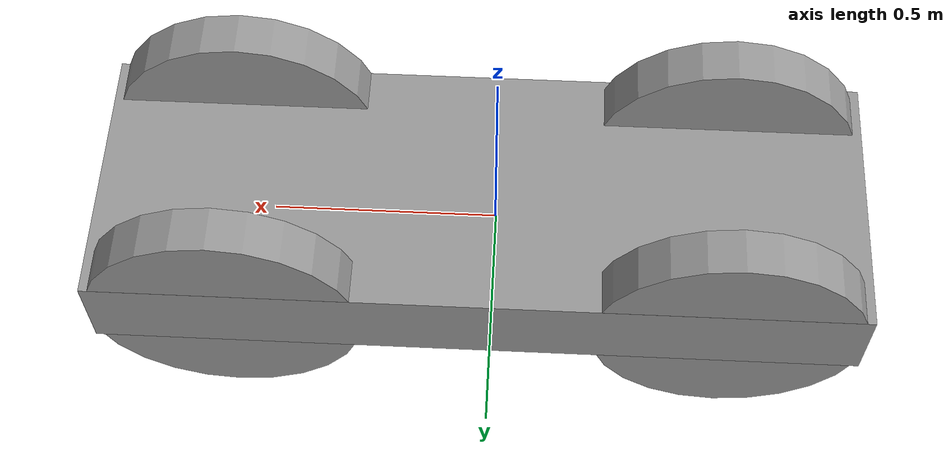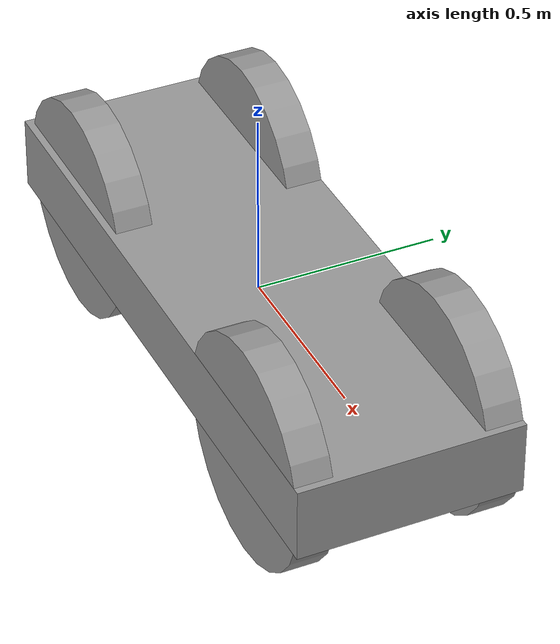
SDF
<?xml version='1.0'?>
<sdf version='1.6'>
  <model name='myrobot'>
    <link name='link_0'>
      <inertial>
        <mass>1</mass>
        <inertia>
          <ixx>0.166667</ixx>
          <ixy>0</ixy>
          <ixz>0</ixz>
          <iyy>0.166667</iyy>
          <iyz>0</iyz>
          <izz>0.166667</izz>
        </inertia>
        <pose frame=''>0 0 0 0 -0 0</pose>
      </inertial>
      <pose frame=''>0.033236 -0.010326 0 0 -0 0</pose>
      <gravity>1</gravity>
      <self_collide>0</self_collide>
      <kinematic>0</kinematic>
      <enable_wind>0</enable_wind>
      <visual name='visual'>
        <pose frame=''>0 0 0 0 -0 0</pose>
        <geometry>
          <box>
            <size>1.7 0.6 0.2</size>
          </box>
        </geometry>
        <material>
          <lighting>1</lighting>
          <script>
            <uri>file://media/materials/scripts/gazebo.material</uri>
            <name>Gazebo/Grey</name>
          </script>
          <shader type='vertex'>
            <normal_map>__default__</normal_map>
          </shader>
          <ambient>0.3 0.3 0.3 1</ambient>
          <diffuse>0.7 0.7 0.7 1</diffuse>
          <specular>0.01 0.01 0.01 1</specular>
          <emissive>0 0 0 1</emissive>
        </material>
        <transparency>0</transparency>
        <cast_shadows>1</cast_shadows>
      </visual>
      <collision name='collision'>
        <laser_retro>0</laser_retro>
        <max_contacts>10</max_contacts>
        <pose frame=''>0 0 0 0 -0 0</pose>
        <geometry>
          <box>
            <size>1.7 0.6 0.2</size>
          </box>
        </geometry>
        <surface>
          <friction>
            <ode>
              <mu>1</mu>
              <mu2>1</mu2>
              <fdir1>0 0 0</fdir1>
              <slip1>0</slip1>
              <slip2>0</slip2>
            </ode>
            <torsional>
              <coefficient>1</coefficient>
              <patch_radius>0</patch_radius>
              <surface_radius>0</surface_radius>
              <use_patch_radius>1</use_patch_radius>
              <ode>
                <slip>0</slip>
              </ode>
            </torsional>
          </friction>
          <bounce>
            <restitution_coefficient>0</restitution_coefficient>
            <threshold>1e+06</threshold>
          </bounce>
          <contact>
            <collide_without_contact>0</collide_without_contact>
            <collide_without_contact_bitmask>1</collide_without_contact_bitmask>
            <collide_bitmask>1</collide_bitmask>
            <ode>
              <soft_cfm>0</soft_cfm>
              <soft_erp>0.2</soft_erp>
              <kp>1e+13</kp>
              <kd>1</kd>
              <max_vel>0.01</max_vel>
              <min_depth>0</min_depth>
            </ode>
            <bullet>
              <split_impulse>1</split_impulse>
              <split_impulse_penetration_threshold>-0.01</split_impulse_penetration_threshold>
              <soft_cfm>0</soft_cfm>
              <soft_erp>0.2</soft_erp>
              <kp>1e+13</kp>
              <kd>1</kd>
            </bullet>
          </contact>
        </surface>
      </collision>
    </link>
    <link name='link_1'>
      <inertial>
        <mass>1</mass>
        <inertia>
          <ixx>0.145833</ixx>
          <ixy>0</ixy>
          <ixz>0</ixz>
          <iyy>0.145833</iyy>
          <iyz>0</iyz>
          <izz>0.125</izz>
        </inertia>
        <pose frame=''>0 0 0 0 -0 0</pose>
      </inertial>
      <pose frame=''>-0.516764 -0.240087 0 1.57 -0 0</pose>
      <gravity>1</gravity>
      <self_collide>0</self_collide>
      <kinematic>0</kinematic>
      <enable_wind>0</enable_wind>
      <visual name='visual'>
        <pose frame=''>0 0 0 0 -0 0</pose>
        <geometry>
          <cylinder>
            <radius>0.3</radius>
            <length>0.1</length>
          </cylinder>
        </geometry>
        <material>
          <lighting>1</lighting>
          <script>
            <uri>file://media/materials/scripts/gazebo.material</uri>
            <name>Gazebo/Grey</name>
          </script>
          <shader type='vertex'>
            <normal_map>__default__</normal_map>
          </shader>
          <ambient>0.3 0.3 0.3 1</ambient>
          <diffuse>0.7 0.7 0.7 1</diffuse>
          <specular>0.01 0.01 0.01 1</specular>
          <emissive>0 0 0 1</emissive>
        </material>
        <transparency>0</transparency>
        <cast_shadows>1</cast_shadows>
      </visual>
      <collision name='collision'>
        <laser_retro>0</laser_retro>
        <max_contacts>10</max_contacts>
        <pose frame=''>0 0 0 0 -0 0</pose>
        <geometry>
          <cylinder>
            <radius>0.3</radius>
            <length>0.1</length>
          </cylinder>
        </geometry>
        <surface>
          <friction>
            <ode>
              <mu>1</mu>
              <mu2>1</mu2>
              <fdir1>0 0 0</fdir1>
              <slip1>0</slip1>
              <slip2>0</slip2>
            </ode>
            <torsional>
              <coefficient>1</coefficient>
              <patch_radius>0</patch_radius>
              <surface_radius>0</surface_radius>
              <use_patch_radius>1</use_patch_radius>
              <ode>
                <slip>0</slip>
              </ode>
            </torsional>
          </friction>
          <bounce>
            <restitution_coefficient>0</restitution_coefficient>
            <threshold>1e+06</threshold>
          </bounce>
          <contact>
            <collide_without_contact>0</collide_without_contact>
            <collide_without_contact_bitmask>1</collide_without_contact_bitmask>
            <collide_bitmask>1</collide_bitmask>
            <ode>
              <soft_cfm>0</soft_cfm>
              <soft_erp>0.2</soft_erp>
              <kp>1e+13</kp>
              <kd>1</kd>
              <max_vel>0.01</max_vel>
              <min_depth>0</min_depth>
            </ode>
            <bullet>
              <split_impulse>1</split_impulse>
              <split_impulse_penetration_threshold>-0.01</split_impulse_penetration_threshold>
              <soft_cfm>0</soft_cfm>
              <soft_erp>0.2</soft_erp>
              <kp>1e+13</kp>
              <kd>1</kd>
            </bullet>
          </contact>
        </surface>
      </collision>
    </link>
    <link name='link_1_clone'>
      <inertial>
        <mass>1</mass>
        <inertia>
          <ixx>0.145833</ixx>
          <ixy>0</ixy>
          <ixz>0</ixz>
          <iyy>0.145833</iyy>
          <iyz>0</iyz>
          <izz>0.125</izz>
        </inertia>
        <pose frame=''>0 0 0 0 -0 0</pose>
      </inertial>
      <pose frame=''>0.583236 -0.260087 0 1.57 -0 0</pose>
      <gravity>1</gravity>
      <self_collide>0</self_collide>
      <kinematic>0</kinematic>
      <enable_wind>0</enable_wind>
      <visual name='visual'>
        <pose frame=''>0 0 0 0 -0 0</pose>
        <geometry>
          <cylinder>
            <radius>0.3</radius>
            <length>0.1</length>
          </cylinder>
        </geometry>
        <material>
          <lighting>1</lighting>
          <script>
            <uri>file://media/materials/scripts/gazebo.material</uri>
            <name>Gazebo/Grey</name>
          </script>
          <shader type='vertex'>
            <normal_map>__default__</normal_map>
          </shader>
          <ambient>0.3 0.3 0.3 1</ambient>
          <diffuse>0.7 0.7 0.7 1</diffuse>
          <specular>0.01 0.01 0.01 1</specular>
          <emissive>0 0 0 1</emissive>
        </material>
        <transparency>0</transparency>
        <cast_shadows>1</cast_shadows>
      </visual>
      <collision name='collision'>
        <laser_retro>0</laser_retro>
        <max_contacts>10</max_contacts>
        <pose frame=''>0 0 0 0 -0 0</pose>
        <geometry>
          <cylinder>
            <radius>0.3</radius>
            <length>0.1</length>
          </cylinder>
        </geometry>
        <surface>
          <friction>
            <ode>
              <mu>1</mu>
              <mu2>1</mu2>
              <fdir1>0 0 0</fdir1>
              <slip1>0</slip1>
              <slip2>0</slip2>
            </ode>
            <torsional>
              <coefficient>1</coefficient>
              <patch_radius>0</patch_radius>
              <surface_radius>0</surface_radius>
              <use_patch_radius>1</use_patch_radius>
              <ode>
                <slip>0</slip>
              </ode>
            </torsional>
          </friction>
          <bounce>
            <restitution_coefficient>0</restitution_coefficient>
            <threshold>1e+06</threshold>
          </bounce>
          <contact>
            <collide_without_contact>0</collide_without_contact>
            <collide_without_contact_bitmask>1</collide_without_contact_bitmask>
            <collide_bitmask>1</collide_bitmask>
            <ode>
              <soft_cfm>0</soft_cfm>
              <soft_erp>0.2</soft_erp>
              <kp>1e+13</kp>
              <kd>1</kd>
              <max_vel>0.01</max_vel>
              <min_depth>0</min_depth>
            </ode>
            <bullet>
              <split_impulse>1</split_impulse>
              <split_impulse_penetration_threshold>-0.01</split_impulse_penetration_threshold>
              <soft_cfm>0</soft_cfm>
              <soft_erp>0.2</soft_erp>
              <kp>1e+13</kp>
              <kd>1</kd>
            </bullet>
          </contact>
        </surface>
      </collision>
    </link>
    <link name='link_1_clone_clone'>
      <inertial>
        <mass>1</mass>
        <inertia>
          <ixx>0.145833</ixx>
          <ixy>0</ixy>
          <ixz>0</ixz>
          <iyy>0.145833</iyy>
          <iyz>0</iyz>
          <izz>0.125</izz>
        </inertia>
        <pose frame=''>0 0 0 0 -0 0</pose>
      </inertial>
      <pose frame=''>-0.516764 0.239435 0 1.57 -0 0</pose>
      <gravity>1</gravity>
      <self_collide>0</self_collide>
      <kinematic>0</kinematic>
      <enable_wind>0</enable_wind>
      <visual name='visual'>
        <pose frame=''>0 0 0 0 -0 0</pose>
        <geometry>
          <cylinder>
            <radius>0.3</radius>
            <length>0.1</length>
          </cylinder>
        </geometry>
        <material>
          <lighting>1</lighting>
          <script>
            <uri>file://media/materials/scripts/gazebo.material</uri>
            <name>Gazebo/Grey</name>
          </script>
          <shader type='vertex'>
            <normal_map>__default__</normal_map>
          </shader>
          <ambient>0.3 0.3 0.3 1</ambient>
          <diffuse>0.7 0.7 0.7 1</diffuse>
          <specular>0.01 0.01 0.01 1</specular>
          <emissive>0 0 0 1</emissive>
        </material>
        <transparency>0</transparency>
        <cast_shadows>1</cast_shadows>
      </visual>
      <collision name='collision'>
        <laser_retro>0</laser_retro>
        <max_contacts>10</max_contacts>
        <pose frame=''>0 0 0 0 -0 0</pose>
        <geometry>
          <cylinder>
            <radius>0.3</radius>
            <length>0.1</length>
          </cylinder>
        </geometry>
        <surface>
          <friction>
            <ode>
              <mu>1</mu>
              <mu2>1</mu2>
              <fdir1>0 0 0</fdir1>
              <slip1>0</slip1>
              <slip2>0</slip2>
            </ode>
            <torsional>
              <coefficient>1</coefficient>
              <patch_radius>0</patch_radius>
              <surface_radius>0</surface_radius>
              <use_patch_radius>1</use_patch_radius>
              <ode>
                <slip>0</slip>
              </ode>
            </torsional>
          </friction>
          <bounce>
            <restitution_coefficient>0</restitution_coefficient>
            <threshold>1e+06</threshold>
          </bounce>
          <contact>
            <collide_without_contact>0</collide_without_contact>
            <collide_without_contact_bitmask>1</collide_without_contact_bitmask>
            <collide_bitmask>1</collide_bitmask>
            <ode>
              <soft_cfm>0</soft_cfm>
              <soft_erp>0.2</soft_erp>
              <kp>1e+13</kp>
              <kd>1</kd>
              <max_vel>0.01</max_vel>
              <min_depth>0</min_depth>
            </ode>
            <bullet>
              <split_impulse>1</split_impulse>
              <split_impulse_penetration_threshold>-0.01</split_impulse_penetration_threshold>
              <soft_cfm>0</soft_cfm>
              <soft_erp>0.2</soft_erp>
              <kp>1e+13</kp>
              <kd>1</kd>
            </bullet>
          </contact>
        </surface>
      </collision>
    </link>
    <link name='link_1_clone_clone_0'>
      <inertial>
        <mass>1</mass>
        <inertia>
          <ixx>0.145833</ixx>
          <ixy>0</ixy>
          <ixz>0</ixz>
          <iyy>0.145833</iyy>
          <iyz>0</iyz>
          <izz>0.125</izz>
        </inertia>
        <pose frame=''>0 0 0 0 -0 0</pose>
      </inertial>
      <pose frame=''>0.583236 0.239435 0 1.57 -0 0</pose>
      <gravity>1</gravity>
      <self_collide>0</self_collide>
      <kinematic>0</kinematic>
      <enable_wind>0</enable_wind>
      <visual name='visual'>
        <pose frame=''>0 0 0 0 -0 0</pose>
        <geometry>
          <cylinder>
            <radius>0.3</radius>
            <length>0.1</length>
          </cylinder>
        </geometry>
        <material>
          <lighting>1</lighting>
          <script>
            <uri>file://media/materials/scripts/gazebo.material</uri>
            <name>Gazebo/Grey</name>
          </script>
          <shader type='vertex'>
            <normal_map>__default__</normal_map>
          </shader>
          <ambient>0.3 0.3 0.3 1</ambient>
          <diffuse>0.7 0.7 0.7 1</diffuse>
          <specular>0.01 0.01 0.01 1</specular>
          <emissive>0 0 0 1</emissive>
        </material>
        <transparency>0</transparency>
        <cast_shadows>1</cast_shadows>
      </visual>
      <collision name='collision'>
        <laser_retro>0</laser_retro>
        <max_contacts>10</max_contacts>
        <pose frame=''>0 0 0 0 -0 0</pose>
        <geometry>
          <cylinder>
            <radius>0.3</radius>
            <length>0.1</length>
          </cylinder>
        </geometry>
        <surface>
          <friction>
            <ode>
              <mu>1</mu>
              <mu2>1</mu2>
              <fdir1>0 0 0</fdir1>
              <slip1>0</slip1>
              <slip2>0</slip2>
            </ode>
            <torsional>
              <coefficient>1</coefficient>
              <patch_radius>0</patch_radius>
              <surface_radius>0</surface_radius>
              <use_patch_radius>1</use_patch_radius>
              <ode>
                <slip>0</slip>
              </ode>
            </torsional>
          </friction>
          <bounce>
            <restitution_coefficient>0</restitution_coefficient>
            <threshold>1e+06</threshold>
          </bounce>
          <contact>
            <collide_without_contact>0</collide_without_contact>
            <collide_without_contact_bitmask>1</collide_without_contact_bitmask>
            <collide_bitmask>1</collide_bitmask>
            <ode>
              <soft_cfm>0</soft_cfm>
              <soft_erp>0.2</soft_erp>
              <kp>1e+13</kp>
              <kd>1</kd>
              <max_vel>0.01</max_vel>
              <min_depth>0</min_depth>
            </ode>
            <bullet>
              <split_impulse>1</split_impulse>
              <split_impulse_penetration_threshold>-0.01</split_impulse_penetration_threshold>
              <soft_cfm>0</soft_cfm>
              <soft_erp>0.2</soft_erp>
              <kp>1e+13</kp>
              <kd>1</kd>
            </bullet>
          </contact>
        </surface>
      </collision>
    </link>
    <link name='link_2'>
      <inertial>
        <mass>1</mass>
        <inertia>
          <ixx>0.1</ixx>
          <ixy>0</ixy>
          <ixz>0</ixz>
          <iyy>0.1</iyy>
          <iyz>0</iyz>
          <izz>0.1</izz>
        </inertia>
        <pose frame=''>0 0 0 0 -0 0</pose>
      </inertial>
      <pose frame=''>-0.032039 0.003925 0 0 -0 0</pose>
      <gravity>1</gravity>
      <self_collide>0</self_collide>
      <kinematic>0</kinematic>
      <enable_wind>0</enable_wind>
      <visual name='visual'>
        <pose frame=''>0 0 0 0 -0 0</pose>
        <geometry>
          <sphere>
            <radius>0.1</radius>
          </sphere>
        </geometry>
        <material>
          <lighting>1</lighting>
          <script>
            <uri>file://media/materials/scripts/gazebo.material</uri>
            <name>Gazebo/Grey</name>
          </script>
          <shader type='vertex'>
            <normal_map>__default__</normal_map>
          </shader>
          <ambient>0.3 0.3 0.3 1</ambient>
          <diffuse>0.7 0.7 0.7 1</diffuse>
          <specular>0.01 0.01 0.01 1</specular>
          <emissive>0 0 0 1</emissive>
        </material>
        <transparency>0</transparency>
        <cast_shadows>1</cast_shadows>
      </visual>
      <collision name='collision'>
        <laser_retro>0</laser_retro>
        <max_contacts>10</max_contacts>
        <pose frame=''>0 0 0 0 -0 0</pose>
        <geometry>
          <sphere>
            <radius>0.1</radius>
          </sphere>
        </geometry>
        <surface>
          <friction>
            <ode>
              <mu>1</mu>
              <mu2>1</mu2>
              <fdir1>0 0 0</fdir1>
              <slip1>0</slip1>
              <slip2>0</slip2>
            </ode>
            <torsional>
              <coefficient>1</coefficient>
              <patch_radius>0</patch_radius>
              <surface_radius>0</surface_radius>
              <use_patch_radius>1</use_patch_radius>
              <ode>
                <slip>0</slip>
              </ode>
            </torsional>
          </friction>
          <bounce>
            <restitution_coefficient>0</restitution_coefficient>
            <threshold>1e+06</threshold>
          </bounce>
          <contact>
            <collide_without_contact>0</collide_without_contact>
            <collide_without_contact_bitmask>1</collide_without_contact_bitmask>
            <collide_bitmask>1</collide_bitmask>
            <ode>
              <soft_cfm>0</soft_cfm>
              <soft_erp>0.2</soft_erp>
              <kp>1e+13</kp>
              <kd>1</kd>
              <max_vel>0.01</max_vel>
              <min_depth>0</min_depth>
            </ode>
            <bullet>
              <split_impulse>1</split_impulse>
              <split_impulse_penetration_threshold>-0.01</split_impulse_penetration_threshold>
              <soft_cfm>0</soft_cfm>
              <soft_erp>0.2</soft_erp>
              <kp>1e+13</kp>
              <kd>1</kd>
            </bullet>
          </contact>
        </surface>
      </collision>
    </link>
    <link name='link_3'>
      <inertial>
        <mass>1</mass>
        <inertia>
          <ixx>0.166667</ixx>
          <ixy>0</ixy>
          <ixz>0</ixz>
          <iyy>0.166667</iyy>
          <iyz>0</iyz>
          <izz>0.166667</izz>
        </inertia>
        <pose frame=''>0 0 0 0 -0 0</pose>
      </inertial>
      <pose frame=''>-0.134138 0.027706 0 0 -0 0</pose>
      <gravity>1</gravity>
      <self_collide>0</self_collide>
      <kinematic>0</kinematic>
      <enable_wind>0</enable_wind>
      <visual name='visual'>
        <pose frame=''>0 0 0 0 -0 0</pose>
        <geometry>
          <box>
            <size>0.05 0.05 0.05</size>
          </box>
        </geometry>
        <material>
          <lighting>1</lighting>
          <script>
            <uri>file://media/materials/scripts/gazebo.material</uri>
            <name>Gazebo/Grey</name>
          </script>
          <shader type='vertex'>
            <normal_map>__default__</normal_map>
          </shader>
          <ambient>0.3 0.3 0.3 1</ambient>
          <diffuse>0.7 0.7 0.7 1</diffuse>
          <specular>0.01 0.01 0.01 1</specular>
          <emissive>0 0 0 1</emissive>
        </material>
        <transparency>0</transparency>
        <cast_shadows>1</cast_shadows>
      </visual>
      <collision name='collision'>
        <laser_retro>0</laser_retro>
        <max_contacts>10</max_contacts>
        <pose frame=''>0 0 0 0 -0 0</pose>
        <geometry>
          <box>
            <size>0.05 0.05 0.05</size>
          </box>
        </geometry>
        <surface>
          <friction>
            <ode>
              <mu>1</mu>
              <mu2>1</mu2>
              <fdir1>0 0 0</fdir1>
              <slip1>0</slip1>
              <slip2>0</slip2>
            </ode>
            <torsional>
              <coefficient>1</coefficient>
              <patch_radius>0</patch_radius>
              <surface_radius>0</surface_radius>
              <use_patch_radius>1</use_patch_radius>
              <ode>
                <slip>0</slip>
              </ode>
            </torsional>
          </friction>
          <bounce>
            <restitution_coefficient>0</restitution_coefficient>
            <threshold>1e+06</threshold>
          </bounce>
          <contact>
            <collide_without_contact>0</collide_without_contact>
            <collide_without_contact_bitmask>1</collide_without_contact_bitmask>
            <collide_bitmask>1</collide_bitmask>
            <ode>
              <soft_cfm>0</soft_cfm>
              <soft_erp>0.2</soft_erp>
              <kp>1e+13</kp>
              <kd>1</kd>
              <max_vel>0.01</max_vel>
              <min_depth>0</min_depth>
            </ode>
            <bullet>
              <split_impulse>1</split_impulse>
              <split_impulse_penetration_threshold>-0.01</split_impulse_penetration_threshold>
              <soft_cfm>0</soft_cfm>
              <soft_erp>0.2</soft_erp>
              <kp>1e+13</kp>
              <kd>1</kd>
            </bullet>
          </contact>
        </surface>
      </collision>
    </link>
    <joint name='link_0_JOINT_0' type='revolute'>
      <parent>link_0</parent>
      <child>link_1</child>
      <pose frame=''>0 0 0 0 -0 0</pose>
      <axis>
        <xyz>1 0 0</xyz>
        <use_parent_model_frame>0</use_parent_model_frame>
        <limit>
          <lower>-1.79769e+308</lower>
          <upper>1.79769e+308</upper>
          <effort>-1</effort>
          <velocity>-1</velocity>
        </limit>
        <dynamics>
          <spring_reference>0</spring_reference>
          <spring_stiffness>0</spring_stiffness>
          <damping>0</damping>
        </dynamics>
      </axis>
      <physics>
        <ode>
          <limit>
            <cfm>0</cfm>
            <erp>0.2</erp>
          </limit>
          <suspension>
            <cfm>0</cfm>
            <erp>0.2</erp>
          </suspension>
        </ode>
      </physics>
    </joint>
    <joint name='link_0_JOINT_1' type='revolute'>
      <parent>link_0</parent>
      <child>link_1_clone</child>
      <pose frame=''>0 0 0 0 -0 0</pose>
      <axis>
        <xyz>1 0 0</xyz>
        <use_parent_model_frame>0</use_parent_model_frame>
        <limit>
          <lower>-1.79769e+308</lower>
          <upper>1.79769e+308</upper>
          <effort>-1</effort>
          <velocity>-1</velocity>
        </limit>
        <dynamics>
          <spring_reference>0</spring_reference>
          <spring_stiffness>0</spring_stiffness>
          <damping>0</damping>
        </dynamics>
      </axis>
      <physics>
        <ode>
          <limit>
            <cfm>0</cfm>
            <erp>0.2</erp>
          </limit>
          <suspension>
            <cfm>0</cfm>
            <erp>0.2</erp>
          </suspension>
        </ode>
      </physics>
    </joint>
    <joint name='link_0_JOINT_2' type='revolute'>
      <parent>link_0</parent>
      <child>link_1</child>
      <pose frame=''>0 0 0 0 -0 0</pose>
      <axis>
        <xyz>1 0 0</xyz>
        <use_parent_model_frame>0</use_parent_model_frame>
        <limit>
          <lower>-1.79769e+308</lower>
          <upper>1.79769e+308</upper>
          <effort>-1</effort>
          <velocity>-1</velocity>
        </limit>
        <dynamics>
          <spring_reference>0</spring_reference>
          <spring_stiffness>0</spring_stiffness>
          <damping>0</damping>
        </dynamics>
      </axis>
      <physics>
        <ode>
          <limit>
            <cfm>0</cfm>
            <erp>0.2</erp>
          </limit>
          <suspension>
            <cfm>0</cfm>
            <erp>0.2</erp>
          </suspension>
        </ode>
      </physics>
    </joint>
    <joint name='link_0_JOINT_3' type='revolute'>
      <parent>link_0</parent>
      <child>link_1_clone_clone</child>
      <pose frame=''>0 0 0 0 -0 0</pose>
      <axis>
        <xyz>1 0 0</xyz>
        <use_parent_model_frame>0</use_parent_model_frame>
        <limit>
          <lower>-1.79769e+308</lower>
          <upper>1.79769e+308</upper>
          <effort>-1</effort>
          <velocity>-1</velocity>
        </limit>
        <dynamics>
          <spring_reference>0</spring_reference>
          <spring_stiffness>0</spring_stiffness>
          <damping>0</damping>
        </dynamics>
      </axis>
      <physics>
        <ode>
          <limit>
            <cfm>0</cfm>
            <erp>0.2</erp>
          </limit>
          <suspension>
            <cfm>0</cfm>
            <erp>0.2</erp>
          </suspension>
        </ode>
      </physics>
    </joint>
    <joint name='link_0_JOINT_4' type='revolute'>
      <parent>link_0</parent>
      <child>link_1_clone_clone_0</child>
      <pose frame=''>0 0 0 0 -0 0</pose>
      <axis>
        <xyz>1 0 0</xyz>
        <use_parent_model_frame>0</use_parent_model_frame>
        <limit>
          <lower>-1.79769e+308</lower>
          <upper>1.79769e+308</upper>
          <effort>-1</effort>
          <velocity>-1</velocity>
        </limit>
        <dynamics>
          <spring_reference>0</spring_reference>
          <spring_stiffness>0</spring_stiffness>
          <damping>0</damping>
        </dynamics>
      </axis>
      <physics>
        <ode>
          <limit>
            <cfm>0</cfm>
            <erp>0.2</erp>
          </limit>
          <suspension>
            <cfm>0</cfm>
            <erp>0.2</erp>
          </suspension>
        </ode>
      </physics>
    </joint>
    <joint name='link_0_JOINT_5' type='revolute'>
      <parent>link_0</parent>
      <child>link_1</child>
      <pose frame=''>0 0 0 0 -0 0</pose>
      <axis>
        <xyz>1 -0.51 0</xyz>
        <use_parent_model_frame>0</use_parent_model_frame>
        <limit>
          <lower>-1.79769e+308</lower>
          <upper>1.79769e+308</upper>
          <effort>-1</effort>
          <velocity>-1</velocity>
        </limit>
        <dynamics>
          <spring_reference>0</spring_reference>
          <spring_stiffness>0</spring_stiffness>
          <damping>0</damping>
        </dynamics>
      </axis>
      <physics>
        <ode>
          <limit>
            <cfm>0</cfm>
            <erp>0.2</erp>
          </limit>
          <suspension>
            <cfm>0</cfm>
            <erp>0.2</erp>
          </suspension>
        </ode>
      </physics>
    </joint>
    <joint name='link_0_JOINT_6' type='revolute'>
      <parent>link_0</parent>
      <child>link_1</child>
      <pose frame=''>0 0 0 0 -0 0</pose>
      <axis>
        <xyz>1 0 0</xyz>
        <use_parent_model_frame>0</use_parent_model_frame>
        <limit>
          <lower>-1.79769e+308</lower>
          <upper>1.79769e+308</upper>
          <effort>-1</effort>
          <velocity>-1</velocity>
        </limit>
        <dynamics>
          <spring_reference>0</spring_reference>
          <spring_stiffness>0</spring_stiffness>
          <damping>0</damping>
        </dynamics>
      </axis>
      <physics>
        <ode>
          <limit>
            <cfm>0</cfm>
            <erp>0.2</erp>
          </limit>
          <suspension>
            <cfm>0</cfm>
            <erp>0.2</erp>
          </suspension>
        </ode>
      </physics>
    </joint>
    <static>0</static>
    <allow_auto_disable>1</allow_auto_disable>
  </model>
</sdf>
